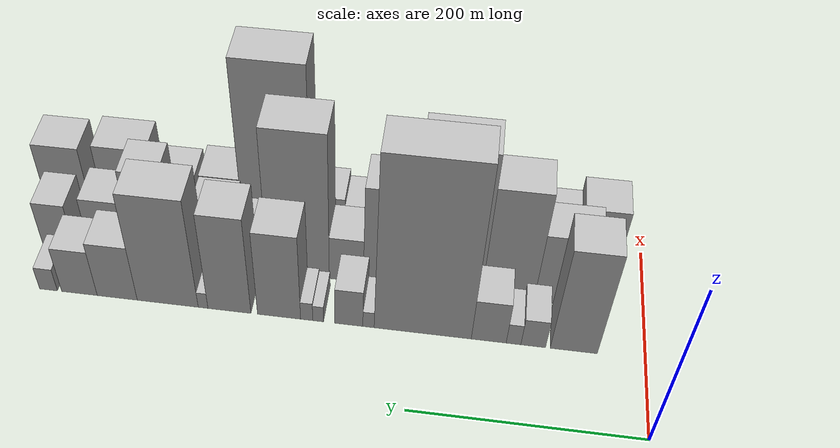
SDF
<sdf version="1.6">
 <world name="default">
  <model name="building_15">
   <static>1</static>
   <pose>100.0000 61.4964 0 0.000000 0.000000 0.000000</pose>
   <link name="link">
    <pose>0 0 66.00 0 0 0</pose>
    <collision name="collision"><geometry><box><size>40.0000 40.4464 132.0000</size></box></geometry></collision>
    <visual name="visual">
     <cast_shadows>0</cast_shadows>
     <geometry><box><size>40.0000 40.4464 132.0000</size></box></geometry>
     <material>
      <script>
       <uri>model://HANNAS_wall/materials/scripts</uri>
       <uri>model://HANNAS_wall/materials/textures</uri>
       <name>vrc/HANNAS_wall</name>
      </script>
     </material>
    </visual>
   </link>
  </model>
  <model name="building_16">
   <static>1</static>
   <pose>100.0000 96.4105 0 0.000000 0.000000 0.000000</pose>
   <link name="link">
    <pose>0 0 18.00 0 0 0</pose>
    <collision name="collision"><geometry><box><size>40.0000 21.3817 36.0000</size></box></geometry></collision>
    <visual name="visual">
     <cast_shadows>0</cast_shadows>
     <geometry><box><size>40.0000 21.3817 36.0000</size></box></geometry>
     <material>
      <script>
       <uri>model://HANNAS_wall/materials/scripts</uri>
       <uri>model://HANNAS_wall/materials/textures</uri>
       <name>vrc/HANNAS_wall</name>
      </script>
     </material>
    </visual>
   </link>
  </model>
  <model name="building_17">
   <static>1</static>
   <pose>100.0000 113.4703 0 0.000000 0.000000 0.000000</pose>
   <link name="link">
    <pose>0 0 13.50 0 0 0</pose>
    <collision name="collision"><geometry><box><size>40.0000 12.7378 27.0000</size></box></geometry></collision>
    <visual name="visual">
     <cast_shadows>0</cast_shadows>
     <geometry><box><size>40.0000 12.7378 27.0000</size></box></geometry>
     <material>
      <script>
       <uri>model://HANNAS_wall/materials/scripts</uri>
       <uri>model://HANNAS_wall/materials/textures</uri>
       <name>vrc/HANNAS_wall</name>
      </script>
     </material>
    </visual>
   </link>
  </model>
  <model name="building_18">
   <static>1</static>
   <pose>100.0000 135.0646 0 0.000000 0.000000 0.000000</pose>
   <link name="link">
    <pose>0 0 27.00 0 0 0</pose>
    <collision name="collision"><geometry><box><size>40.0000 30.4509 54.0000</size></box></geometry></collision>
    <visual name="visual">
     <cast_shadows>0</cast_shadows>
     <geometry><box><size>40.0000 30.4509 54.0000</size></box></geometry>
     <material>
      <script>
       <uri>model://HANNAS_wall/materials/scripts</uri>
       <uri>model://HANNAS_wall/materials/textures</uri>
       <name>vrc/HANNAS_wall</name>
      </script>
     </material>
    </visual>
   </link>
  </model>
  <model name="building_19">
   <static>1</static>
   <pose>100.0000 193.0504 0 0.000000 0.000000 0.000000</pose>
   <link name="link">
    <pose>0 0 109.50 0 0 0</pose>
    <collision name="collision"><geometry><box><size>40.0000 85.5208 219.0000</size></box></geometry></collision>
    <visual name="visual">
     <cast_shadows>0</cast_shadows>
     <geometry><box><size>40.0000 85.5208 219.0000</size></box></geometry>
     <material>
      <script>
       <uri>model://HANNAS_wall/materials/scripts</uri>
       <uri>model://HANNAS_wall/materials/textures</uri>
       <name>vrc/HANNAS_wall</name>
      </script>
     </material>
    </visual>
   </link>
  </model>
  <model name="building_20">
   <static>1</static>
   <pose>100.0000 240.8615 0 0.000000 0.000000 0.000000</pose>
   <link name="link">
    <pose>0 0 10.50 0 0 0</pose>
    <collision name="collision"><geometry><box><size>40.0000 10.1014 21.0000</size></box></geometry></collision>
    <visual name="visual">
     <cast_shadows>0</cast_shadows>
     <geometry><box><size>40.0000 10.1014 21.0000</size></box></geometry>
     <material>
      <script>
       <uri>model://HANNAS_wall/materials/scripts</uri>
       <uri>model://HANNAS_wall/materials/textures</uri>
       <name>vrc/HANNAS_wall</name>
      </script>
     </material>
    </visual>
   </link>
  </model>
  <model name="building_21">
   <static>1</static>
   <pose>100.0000 258.3978 0 0.000000 0.000000 0.000000</pose>
   <link name="link">
    <pose>0 0 24.00 0 0 0</pose>
    <collision name="collision"><geometry><box><size>40.0000 24.9711 48.0000</size></box></geometry></collision>
    <visual name="visual">
     <cast_shadows>0</cast_shadows>
     <geometry><box><size>40.0000 24.9711 48.0000</size></box></geometry>
     <material>
      <script>
       <uri>model://HANNAS_wall/materials/scripts</uri>
       <uri>model://HANNAS_wall/materials/textures</uri>
       <name>vrc/HANNAS_wall</name>
      </script>
     </material>
    </visual>
   </link>
  </model>
  <model name="building_22">
   <static>1</static>
   <pose>100.0000 285.7447 0 0.000000 0.000000 0.000000</pose>
   <link name="link">
    <pose>0 0 10.50 0 0 0</pose>
    <collision name="collision"><geometry><box><size>40.0000 9.7227 21.0000</size></box></geometry></collision>
    <visual name="visual">
     <cast_shadows>0</cast_shadows>
     <geometry><box><size>40.0000 9.7227 21.0000</size></box></geometry>
     <material>
      <script>
       <uri>model://HANNAS_wall/materials/scripts</uri>
       <uri>model://HANNAS_wall/materials/textures</uri>
       <name>vrc/HANNAS_wall</name>
      </script>
     </material>
    </visual>
   </link>
  </model>
  <model name="building_23">
   <static>1</static>
   <pose>100.0000 296.0461 0 0.000000 0.000000 0.000000</pose>
   <link name="link">
    <pose>0 0 12.00 0 0 0</pose>
    <collision name="collision"><geometry><box><size>40.0000 10.8802 24.0000</size></box></geometry></collision>
    <visual name="visual">
     <cast_shadows>0</cast_shadows>
     <geometry><box><size>40.0000 10.8802 24.0000</size></box></geometry>
     <material>
      <script>
       <uri>model://HANNAS_wall/materials/scripts</uri>
       <uri>model://HANNAS_wall/materials/textures</uri>
       <name>vrc/HANNAS_wall</name>
      </script>
     </material>
    </visual>
   </link>
  </model>
  <model name="building_24">
   <static>1</static>
   <pose>100.0000 320.9167 0 0.000000 0.000000 0.000000</pose>
   <link name="link">
    <pose>0 0 55.50 0 0 0</pose>
    <collision name="collision"><geometry><box><size>40.0000 38.8610 111.0000</size></box></geometry></collision>
    <visual name="visual">
     <cast_shadows>0</cast_shadows>
     <geometry><box><size>40.0000 38.8610 111.0000</size></box></geometry>
     <material>
      <script>
       <uri>model://HANNAS_wall/materials/scripts</uri>
       <uri>model://HANNAS_wall/materials/textures</uri>
       <name>vrc/HANNAS_wall</name>
      </script>
     </material>
    </visual>
   </link>
  </model>
  <model name="building_25">
   <static>1</static>
   <pose>100.0000 365.8912 0 0.000000 0.000000 0.000000</pose>
   <link name="link">
    <pose>0 0 63.00 0 0 0</pose>
    <collision name="collision"><geometry><box><size>40.0000 39.0881 126.0000</size></box></geometry></collision>
    <visual name="visual">
     <cast_shadows>0</cast_shadows>
     <geometry><box><size>40.0000 39.0881 126.0000</size></box></geometry>
     <material>
      <script>
       <uri>model://HANNAS_wall/materials/scripts</uri>
       <uri>model://HANNAS_wall/materials/textures</uri>
       <name>vrc/HANNAS_wall</name>
      </script>
     </material>
    </visual>
   </link>
  </model>
  <model name="building_26">
   <static>1</static>
   <pose>100.0000 389.8815 0 0.000000 0.000000 0.000000</pose>
   <link name="link">
    <pose>0 0 10.50 0 0 0</pose>
    <collision name="collision"><geometry><box><size>40.0000 8.8925 21.0000</size></box></geometry></collision>
    <visual name="visual">
     <cast_shadows>0</cast_shadows>
     <geometry><box><size>40.0000 8.8925 21.0000</size></box></geometry>
     <material>
      <script>
       <uri>model://HANNAS_wall/materials/scripts</uri>
       <uri>model://HANNAS_wall/materials/textures</uri>
       <name>vrc/HANNAS_wall</name>
      </script>
     </material>
    </visual>
   </link>
  </model>
  <model name="building_27">
   <static>1</static>
   <pose>100.0000 422.3548 0 0.000000 0.000000 0.000000</pose>
   <link name="link">
    <pose>0 0 70.50 0 0 0</pose>
    <collision name="collision"><geometry><box><size>40.0000 56.0541 141.0000</size></box></geometry></collision>
    <visual name="visual">
     <cast_shadows>0</cast_shadows>
     <geometry><box><size>40.0000 56.0541 141.0000</size></box></geometry>
     <material>
      <script>
       <uri>model://HANNAS_wall/materials/scripts</uri>
       <uri>model://HANNAS_wall/materials/textures</uri>
       <name>vrc/HANNAS_wall</name>
      </script>
     </material>
    </visual>
   </link>
  </model>
  <model name="building_28">
   <static>1</static>
   <pose>100.0000 468.9450 0 0.000000 0.000000 0.000000</pose>
   <link name="link">
    <pose>0 0 36.00 0 0 0</pose>
    <collision name="collision"><geometry><box><size>40.0000 37.1263 72.0000</size></box></geometry></collision>
    <visual name="visual">
     <cast_shadows>0</cast_shadows>
     <geometry><box><size>40.0000 37.1263 72.0000</size></box></geometry>
     <material>
      <script>
       <uri>model://HANNAS_wall/materials/scripts</uri>
       <uri>model://HANNAS_wall/materials/textures</uri>
       <name>vrc/HANNAS_wall</name>
      </script>
     </material>
    </visual>
   </link>
  </model>
  <model name="building_29">
   <static>1</static>
   <pose>100.0000 504.1079 0 0.000000 0.000000 0.000000</pose>
   <link name="link">
    <pose>0 0 30.00 0 0 0</pose>
    <collision name="collision"><geometry><box><size>40.0000 33.1996 60.0000</size></box></geometry></collision>
    <visual name="visual">
     <cast_shadows>0</cast_shadows>
     <geometry><box><size>40.0000 33.1996 60.0000</size></box></geometry>
     <material>
      <script>
       <uri>model://HANNAS_wall/materials/scripts</uri>
       <uri>model://HANNAS_wall/materials/textures</uri>
       <name>vrc/HANNAS_wall</name>
      </script>
     </material>
    </visual>
   </link>
  </model>
  <model name="building_30">
   <static>1</static>
   <pose>100.0000 533.0738 0 0.000000 0.000000 0.000000</pose>
   <link name="link">
    <pose>0 0 15.00 0 0 0</pose>
    <collision name="collision"><geometry><box><size>40.0000 16.7322 30.0000</size></box></geometry></collision>
    <visual name="visual">
     <cast_shadows>0</cast_shadows>
     <geometry><box><size>40.0000 16.7322 30.0000</size></box></geometry>
     <material>
      <script>
       <uri>model://HANNAS_wall/materials/scripts</uri>
       <uri>model://HANNAS_wall/materials/textures</uri>
       <name>vrc/HANNAS_wall</name>
      </script>
     </material>
    </visual>
   </link>
  </model>
  <model name="building_43">
   <static>1</static>
   <pose>149.0000 73.2251 0 0.000000 0.000000 0.000000</pose>
   <link name="link">
    <pose>0 0 45.00 0 0 0</pose>
    <collision name="collision"><geometry><box><size>40.0000 48.5462 90.0000</size></box></geometry></collision>
    <visual name="visual">
     <cast_shadows>0</cast_shadows>
     <geometry><box><size>40.0000 48.5462 90.0000</size></box></geometry>
     <material>
      <script>
       <uri>model://HANNAS_wall/materials/scripts</uri>
       <uri>model://HANNAS_wall/materials/textures</uri>
       <name>vrc/HANNAS_wall</name>
      </script>
     </material>
    </visual>
   </link>
  </model>
  <model name="building_44">
   <static>1</static>
   <pose>149.0000 120.9643 0 0.000000 0.000000 0.000000</pose>
   <link name="link">
    <pose>0 0 70.50 0 0 0</pose>
    <collision name="collision"><geometry><box><size>40.0000 46.9321 141.0000</size></box></geometry></collision>
    <visual name="visual">
     <cast_shadows>0</cast_shadows>
     <geometry><box><size>40.0000 46.9321 141.0000</size></box></geometry>
     <material>
      <script>
       <uri>model://HANNAS_wall/materials/scripts</uri>
       <uri>model://HANNAS_wall/materials/textures</uri>
       <name>vrc/HANNAS_wall</name>
      </script>
     </material>
    </visual>
   </link>
  </model>
  <model name="building_45">
   <static>1</static>
   <pose>149.0000 175.4165 0 0.000000 0.000000 0.000000</pose>
   <link name="link">
    <pose>0 0 90.00 0 0 0</pose>
    <collision name="collision"><geometry><box><size>40.0000 61.9723 180.0000</size></box></geometry></collision>
    <visual name="visual">
     <cast_shadows>0</cast_shadows>
     <geometry><box><size>40.0000 61.9723 180.0000</size></box></geometry>
     <material>
      <script>
       <uri>model://HANNAS_wall/materials/scripts</uri>
       <uri>model://HANNAS_wall/materials/textures</uri>
       <name>vrc/HANNAS_wall</name>
      </script>
     </material>
    </visual>
   </link>
  </model>
  <model name="building_46">
   <static>1</static>
   <pose>149.0000 232.6286 0 0.000000 0.000000 0.000000</pose>
   <link name="link">
    <pose>0 0 63.00 0 0 0</pose>
    <collision name="collision"><geometry><box><size>40.0000 38.4519 126.0000</size></box></geometry></collision>
    <visual name="visual">
     <cast_shadows>0</cast_shadows>
     <geometry><box><size>40.0000 38.4519 126.0000</size></box></geometry>
     <material>
      <script>
       <uri>model://HANNAS_wall/materials/scripts</uri>
       <uri>model://HANNAS_wall/materials/textures</uri>
       <name>vrc/HANNAS_wall</name>
      </script>
     </material>
    </visual>
   </link>
  </model>
  <model name="building_47">
   <static>1</static>
   <pose>149.0000 267.4853 0 0.000000 0.000000 0.000000</pose>
   <link name="link">
    <pose>0 0 28.50 0 0 0</pose>
    <collision name="collision"><geometry><box><size>40.0000 31.2615 57.0000</size></box></geometry></collision>
    <visual name="visual">
     <cast_shadows>0</cast_shadows>
     <geometry><box><size>40.0000 31.2615 57.0000</size></box></geometry>
     <material>
      <script>
       <uri>model://HANNAS_wall/materials/scripts</uri>
       <uri>model://HANNAS_wall/materials/textures</uri>
       <name>vrc/HANNAS_wall</name>
      </script>
     </material>
    </visual>
   </link>
  </model>
  <model name="building_48">
   <static>1</static>
   <pose>149.0000 311.6523 0 0.000000 0.000000 0.000000</pose>
   <link name="link">
    <pose>0 0 91.50 0 0 0</pose>
    <collision name="collision"><geometry><box><size>40.0000 57.0725 183.0000</size></box></geometry></collision>
    <visual name="visual">
     <cast_shadows>0</cast_shadows>
     <geometry><box><size>40.0000 57.0725 183.0000</size></box></geometry>
     <material>
      <script>
       <uri>model://HANNAS_wall/materials/scripts</uri>
       <uri>model://HANNAS_wall/materials/textures</uri>
       <name>vrc/HANNAS_wall</name>
      </script>
     </material>
    </visual>
   </link>
  </model>
  <model name="building_49">
   <static>1</static>
   <pose>149.0000 354.5945 0 0.000000 0.000000 0.000000</pose>
   <link name="link">
    <pose>0 0 27.00 0 0 0</pose>
    <collision name="collision"><geometry><box><size>40.0000 28.8119 54.0000</size></box></geometry></collision>
    <visual name="visual">
     <cast_shadows>0</cast_shadows>
     <geometry><box><size>40.0000 28.8119 54.0000</size></box></geometry>
     <material>
      <script>
       <uri>model://HANNAS_wall/materials/scripts</uri>
       <uri>model://HANNAS_wall/materials/textures</uri>
       <name>vrc/HANNAS_wall</name>
      </script>
     </material>
    </visual>
   </link>
  </model>
  <model name="building_50">
   <static>1</static>
   <pose>149.0000 387.9736 0 0.000000 0.000000 0.000000</pose>
   <link name="link">
    <pose>0 0 37.50 0 0 0</pose>
    <collision name="collision"><geometry><box><size>40.0000 37.9464 75.0000</size></box></geometry></collision>
    <visual name="visual">
     <cast_shadows>0</cast_shadows>
     <geometry><box><size>40.0000 37.9464 75.0000</size></box></geometry>
     <material>
      <script>
       <uri>model://HANNAS_wall/materials/scripts</uri>
       <uri>model://HANNAS_wall/materials/textures</uri>
       <name>vrc/HANNAS_wall</name>
      </script>
     </material>
    </visual>
   </link>
  </model>
  <model name="building_51">
   <static>1</static>
   <pose>149.0000 418.9067 0 0.000000 0.000000 0.000000</pose>
   <link name="link">
    <pose>0 0 22.50 0 0 0</pose>
    <collision name="collision"><geometry><box><size>40.0000 23.9198 45.0000</size></box></geometry></collision>
    <visual name="visual">
     <cast_shadows>0</cast_shadows>
     <geometry><box><size>40.0000 23.9198 45.0000</size></box></geometry>
     <material>
      <script>
       <uri>model://HANNAS_wall/materials/scripts</uri>
       <uri>model://HANNAS_wall/materials/textures</uri>
       <name>vrc/HANNAS_wall</name>
      </script>
     </material>
    </visual>
   </link>
  </model>
  <model name="building_52">
   <static>1</static>
   <pose>149.0000 448.6103 0 0.000000 0.000000 0.000000</pose>
   <link name="link">
    <pose>0 0 57.00 0 0 0</pose>
    <collision name="collision"><geometry><box><size>40.0000 35.4875 114.0000</size></box></geometry></collision>
    <visual name="visual">
     <cast_shadows>0</cast_shadows>
     <geometry><box><size>40.0000 35.4875 114.0000</size></box></geometry>
     <material>
      <script>
       <uri>model://HANNAS_wall/materials/scripts</uri>
       <uri>model://HANNAS_wall/materials/textures</uri>
       <name>vrc/HANNAS_wall</name>
      </script>
     </material>
    </visual>
   </link>
  </model>
  <model name="building_53">
   <static>1</static>
   <pose>149.0000 487.3906 0 0.000000 0.000000 0.000000</pose>
   <link name="link">
    <pose>0 0 36.00 0 0 0</pose>
    <collision name="collision"><geometry><box><size>40.0000 42.0730 72.0000</size></box></geometry></collision>
    <visual name="visual">
     <cast_shadows>0</cast_shadows>
     <geometry><box><size>40.0000 42.0730 72.0000</size></box></geometry>
     <material>
      <script>
       <uri>model://HANNAS_wall/materials/scripts</uri>
       <uri>model://HANNAS_wall/materials/textures</uri>
       <name>vrc/HANNAS_wall</name>
      </script>
     </material>
    </visual>
   </link>
  </model>
  <model name="building_54">
   <static>1</static>
   <pose>149.0000 520.4555 0 0.000000 0.000000 0.000000</pose>
   <link name="link">
    <pose>0 0 7.50 0 0 0</pose>
    <collision name="collision"><geometry><box><size>40.0000 6.0568 15.0000</size></box></geometry></collision>
    <visual name="visual">
     <cast_shadows>0</cast_shadows>
     <geometry><box><size>40.0000 6.0568 15.0000</size></box></geometry>
     <material>
      <script>
       <uri>model://HANNAS_wall/materials/scripts</uri>
       <uri>model://HANNAS_wall/materials/textures</uri>
       <name>vrc/HANNAS_wall</name>
      </script>
     </material>
    </visual>
   </link>
  </model>
  <model name="building_55">
   <static>1</static>
   <pose>149.0000 538.6340 0 0.000000 0.000000 0.000000</pose>
   <link name="link">
    <pose>0 0 30.00 0 0 0</pose>
    <collision name="collision"><geometry><box><size>40.0000 30.3002 60.0000</size></box></geometry></collision>
    <visual name="visual">
     <cast_shadows>0</cast_shadows>
     <geometry><box><size>40.0000 30.3002 60.0000</size></box></geometry>
     <material>
      <script>
       <uri>model://HANNAS_wall/materials/scripts</uri>
       <uri>model://HANNAS_wall/materials/textures</uri>
       <name>vrc/HANNAS_wall</name>
      </script>
     </material>
    </visual>
   </link>
  </model>
  <model name="building_72">
   <static>1</static>
   <pose>198.0000 42.5875 0 0.000000 0.000000 0.000000</pose>
   <link name="link">
    <pose>0 0 37.50 0 0 0</pose>
    <collision name="collision"><geometry><box><size>40.0000 40.5264 75.0000</size></box></geometry></collision>
    <visual name="visual">
     <cast_shadows>0</cast_shadows>
     <geometry><box><size>40.0000 40.5264 75.0000</size></box></geometry>
     <material>
      <script>
       <uri>model://HANNAS_wall/materials/scripts</uri>
       <uri>model://HANNAS_wall/materials/textures</uri>
       <name>vrc/HANNAS_wall</name>
      </script>
     </material>
    </visual>
   </link>
  </model>
  <model name="building_73">
   <static>1</static>
   <pose>198.0000 78.2104 0 0.000000 0.000000 0.000000</pose>
   <link name="link">
    <pose>0 0 28.50 0 0 0</pose>
    <collision name="collision"><geometry><box><size>40.0000 30.7195 57.0000</size></box></geometry></collision>
    <visual name="visual">
     <cast_shadows>0</cast_shadows>
     <geometry><box><size>40.0000 30.7195 57.0000</size></box></geometry>
     <material>
      <script>
       <uri>model://HANNAS_wall/materials/scripts</uri>
       <uri>model://HANNAS_wall/materials/textures</uri>
       <name>vrc/HANNAS_wall</name>
      </script>
     </material>
    </visual>
   </link>
  </model>
  <model name="building_74">
   <static>1</static>
   <pose>198.0000 102.3348 0 0.000000 0.000000 0.000000</pose>
   <link name="link">
    <pose>0 0 16.50 0 0 0</pose>
    <collision name="collision"><geometry><box><size>40.0000 17.5293 33.0000</size></box></geometry></collision>
    <visual name="visual">
     <cast_shadows>0</cast_shadows>
     <geometry><box><size>40.0000 17.5293 33.0000</size></box></geometry>
     <material>
      <script>
       <uri>model://HANNAS_wall/materials/scripts</uri>
       <uri>model://HANNAS_wall/materials/textures</uri>
       <name>vrc/HANNAS_wall</name>
      </script>
     </material>
    </visual>
   </link>
  </model>
  <model name="building_75">
   <static>1</static>
   <pose>198.0000 130.9954 0 0.000000 0.000000 0.000000</pose>
   <link name="link">
    <pose>0 0 37.50 0 0 0</pose>
    <collision name="collision"><geometry><box><size>40.0000 39.7919 75.0000</size></box></geometry></collision>
    <visual name="visual">
     <cast_shadows>0</cast_shadows>
     <geometry><box><size>40.0000 39.7919 75.0000</size></box></geometry>
     <material>
      <script>
       <uri>model://HANNAS_wall/materials/scripts</uri>
       <uri>model://HANNAS_wall/materials/textures</uri>
       <name>vrc/HANNAS_wall</name>
      </script>
     </material>
    </visual>
   </link>
  </model>
  <model name="building_76">
   <static>1</static>
   <pose>198.0000 177.1952 0 0.000000 0.000000 0.000000</pose>
   <link name="link">
    <pose>0 0 42.00 0 0 0</pose>
    <collision name="collision"><geometry><box><size>40.0000 44.6077 84.0000</size></box></geometry></collision>
    <visual name="visual">
     <cast_shadows>0</cast_shadows>
     <geometry><box><size>40.0000 44.6077 84.0000</size></box></geometry>
     <material>
      <script>
       <uri>model://HANNAS_wall/materials/scripts</uri>
       <uri>model://HANNAS_wall/materials/textures</uri>
       <name>vrc/HANNAS_wall</name>
      </script>
     </material>
    </visual>
   </link>
  </model>
  <model name="building_77">
   <static>1</static>
   <pose>198.0000 225.1353 0 0.000000 0.000000 0.000000</pose>
   <link name="link">
    <pose>0 0 48.00 0 0 0</pose>
    <collision name="collision"><geometry><box><size>40.0000 33.2726 96.0000</size></box></geometry></collision>
    <visual name="visual">
     <cast_shadows>0</cast_shadows>
     <geometry><box><size>40.0000 33.2726 96.0000</size></box></geometry>
     <material>
      <script>
       <uri>model://HANNAS_wall/materials/scripts</uri>
       <uri>model://HANNAS_wall/materials/textures</uri>
       <name>vrc/HANNAS_wall</name>
      </script>
     </material>
    </visual>
   </link>
  </model>
  <model name="building_78">
   <static>1</static>
   <pose>198.0000 263.1807 0 0.000000 0.000000 0.000000</pose>
   <link name="link">
    <pose>0 0 22.50 0 0 0</pose>
    <collision name="collision"><geometry><box><size>40.0000 24.8181 45.0000</size></box></geometry></collision>
    <visual name="visual">
     <cast_shadows>0</cast_shadows>
     <geometry><box><size>40.0000 24.8181 45.0000</size></box></geometry>
     <material>
      <script>
       <uri>model://HANNAS_wall/materials/scripts</uri>
       <uri>model://HANNAS_wall/materials/textures</uri>
       <name>vrc/HANNAS_wall</name>
      </script>
     </material>
    </visual>
   </link>
  </model>
  <model name="building_79">
   <static>1</static>
   <pose>198.0000 291.6631 0 0.000000 0.000000 0.000000</pose>
   <link name="link">
    <pose>0 0 27.00 0 0 0</pose>
    <collision name="collision"><geometry><box><size>40.0000 32.1468 54.0000</size></box></geometry></collision>
    <visual name="visual">
     <cast_shadows>0</cast_shadows>
     <geometry><box><size>40.0000 32.1468 54.0000</size></box></geometry>
     <material>
      <script>
       <uri>model://HANNAS_wall/materials/scripts</uri>
       <uri>model://HANNAS_wall/materials/textures</uri>
       <name>vrc/HANNAS_wall</name>
      </script>
     </material>
    </visual>
   </link>
  </model>
  <model name="building_80">
   <static>1</static>
   <pose>198.0000 340.3496 0 0.000000 0.000000 0.000000</pose>
   <link name="link">
    <pose>0 0 105.00 0 0 0</pose>
    <collision name="collision"><geometry><box><size>40.0000 65.2262 210.0000</size></box></geometry></collision>
    <visual name="visual">
     <cast_shadows>0</cast_shadows>
     <geometry><box><size>40.0000 65.2262 210.0000</size></box></geometry>
     <material>
      <script>
       <uri>model://HANNAS_wall/materials/scripts</uri>
       <uri>model://HANNAS_wall/materials/textures</uri>
       <name>vrc/HANNAS_wall</name>
      </script>
     </material>
    </visual>
   </link>
  </model>
  <model name="building_81">
   <static>1</static>
   <pose>198.0000 391.8161 0 0.000000 0.000000 0.000000</pose>
   <link name="link">
    <pose>0 0 33.00 0 0 0</pose>
    <collision name="collision"><geometry><box><size>40.0000 37.7067 66.0000</size></box></geometry></collision>
    <visual name="visual">
     <cast_shadows>0</cast_shadows>
     <geometry><box><size>40.0000 37.7067 66.0000</size></box></geometry>
     <material>
      <script>
       <uri>model://HANNAS_wall/materials/scripts</uri>
       <uri>model://HANNAS_wall/materials/textures</uri>
       <name>vrc/HANNAS_wall</name>
      </script>
     </material>
    </visual>
   </link>
  </model>
  <model name="building_82">
   <static>1</static>
   <pose>198.0000 433.4319 0 0.000000 0.000000 0.000000</pose>
   <link name="link">
    <pose>0 0 30.00 0 0 0</pose>
    <collision name="collision"><geometry><box><size>40.0000 35.5249 60.0000</size></box></geometry></collision>
    <visual name="visual">
     <cast_shadows>0</cast_shadows>
     <geometry><box><size>40.0000 35.5249 60.0000</size></box></geometry>
     <material>
      <script>
       <uri>model://HANNAS_wall/materials/scripts</uri>
       <uri>model://HANNAS_wall/materials/textures</uri>
       <name>vrc/HANNAS_wall</name>
      </script>
     </material>
    </visual>
   </link>
  </model>
  <model name="building_83">
   <static>1</static>
   <pose>198.0000 482.3124 0 0.000000 0.000000 0.000000</pose>
   <link name="link">
    <pose>0 0 45.00 0 0 0</pose>
    <collision name="collision"><geometry><box><size>40.0000 50.2361 90.0000</size></box></geometry></collision>
    <visual name="visual">
     <cast_shadows>0</cast_shadows>
     <geometry><box><size>40.0000 50.2361 90.0000</size></box></geometry>
     <material>
      <script>
       <uri>model://HANNAS_wall/materials/scripts</uri>
       <uri>model://HANNAS_wall/materials/textures</uri>
       <name>vrc/HANNAS_wall</name>
      </script>
     </material>
    </visual>
   </link>
  </model>
  <model name="building_84">
   <static>1</static>
   <pose>198.0000 516.7726 0 0.000000 0.000000 0.000000</pose>
   <link name="link">
    <pose>0 0 9.00 0 0 0</pose>
    <collision name="collision"><geometry><box><size>40.0000 8.6843 18.0000</size></box></geometry></collision>
    <visual name="visual">
     <cast_shadows>0</cast_shadows>
     <geometry><box><size>40.0000 8.6843 18.0000</size></box></geometry>
     <material>
      <script>
       <uri>model://HANNAS_wall/materials/scripts</uri>
       <uri>model://HANNAS_wall/materials/textures</uri>
       <name>vrc/HANNAS_wall</name>
      </script>
     </material>
    </visual>
   </link>
  </model>
  <model name="building_85">
   <static>1</static>
   <pose>198.0000 543.1978 0 0.000000 0.000000 0.000000</pose>
   <link name="link">
    <pose>0 0 42.00 0 0 0</pose>
    <collision name="collision"><geometry><box><size>40.0000 44.1661 84.0000</size></box></geometry></collision>
    <visual name="visual">
     <cast_shadows>0</cast_shadows>
     <geometry><box><size>40.0000 44.1661 84.0000</size></box></geometry>
     <material>
      <script>
       <uri>model://HANNAS_wall/materials/scripts</uri>
       <uri>model://HANNAS_wall/materials/textures</uri>
       <name>vrc/HANNAS_wall</name>
      </script>
     </material>
    </visual>
   </link>
  </model>
 </world>
</sdf>
